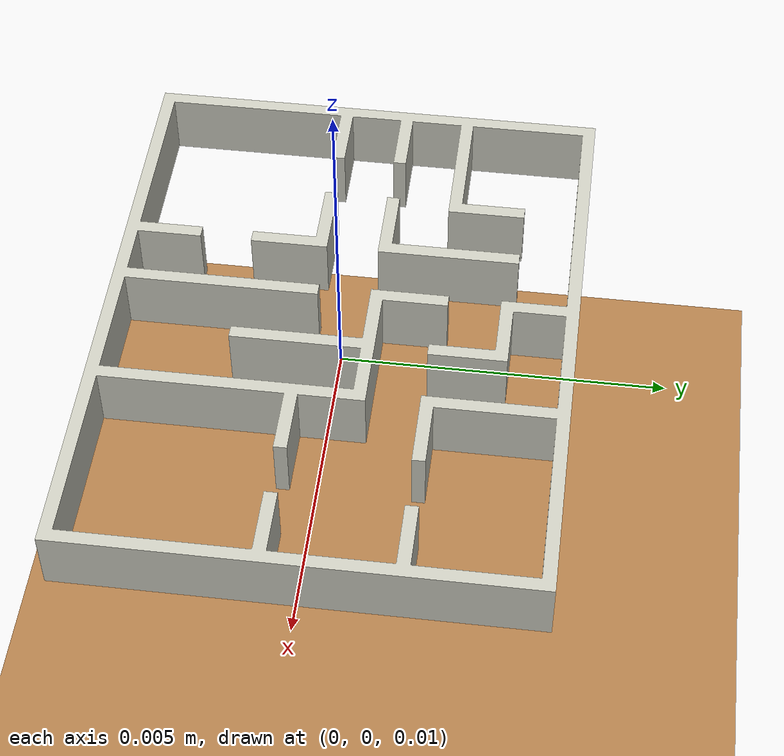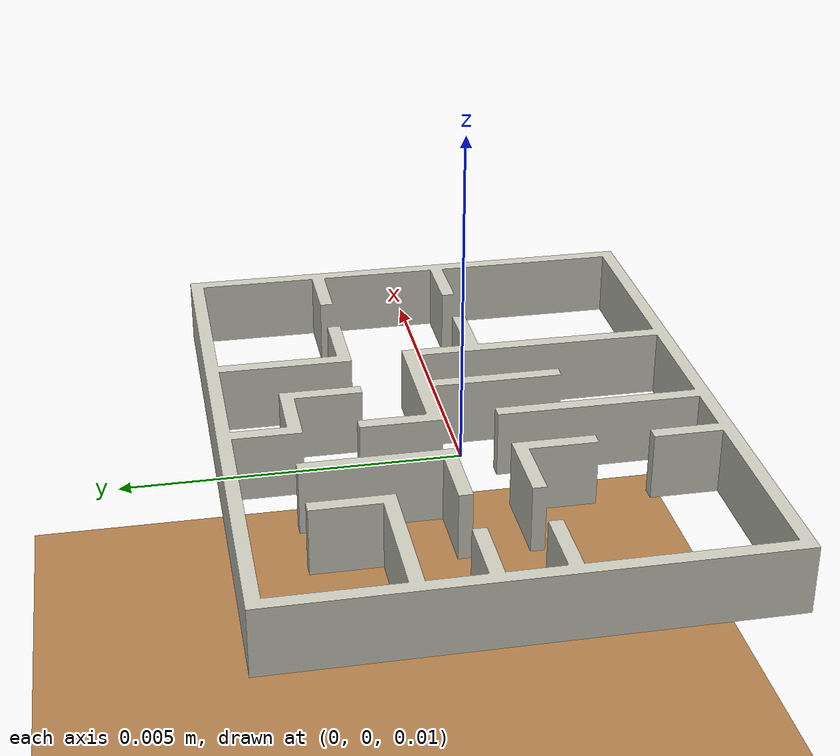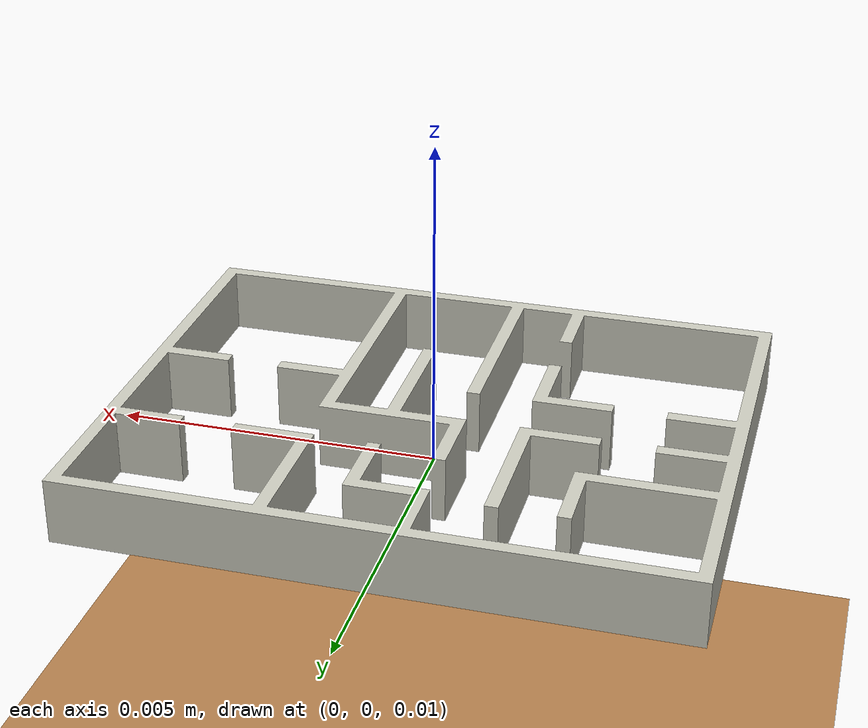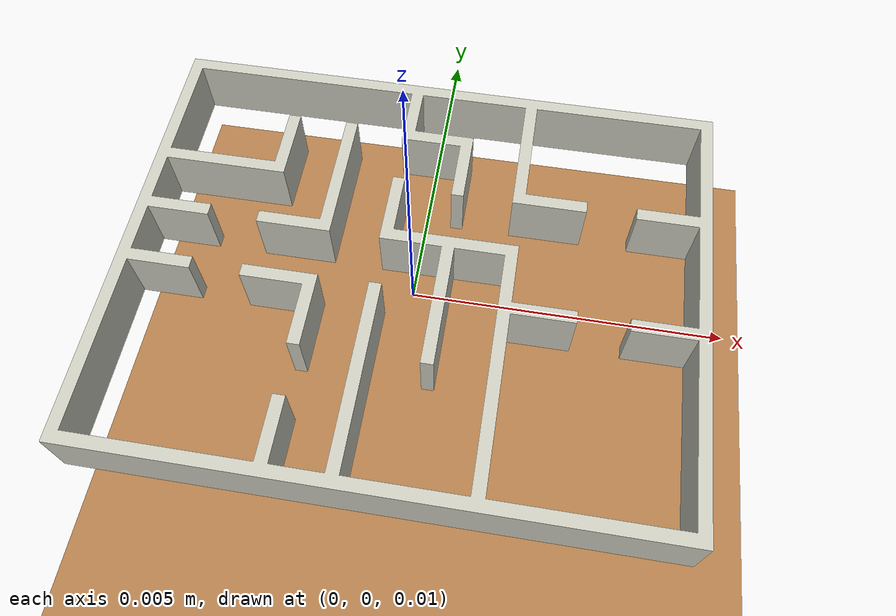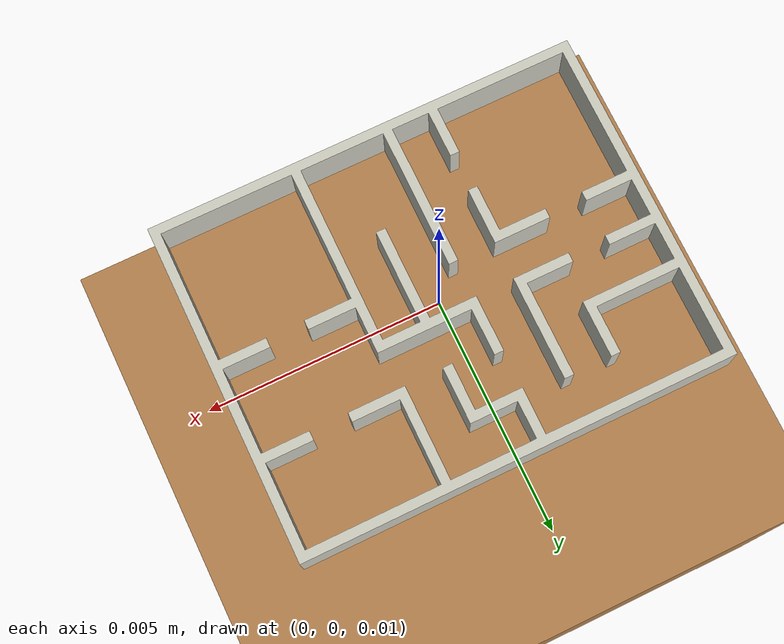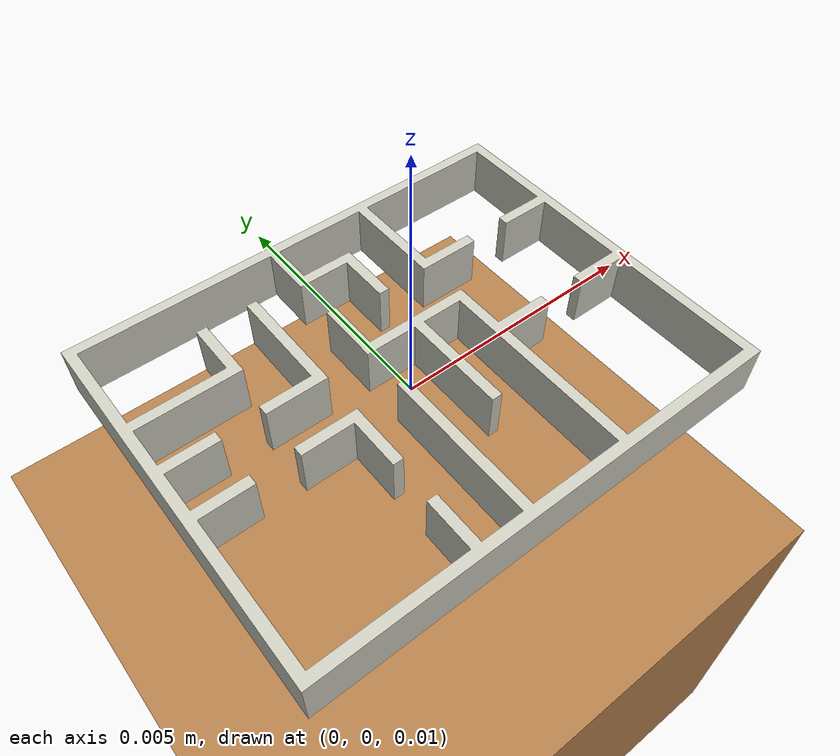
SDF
<?xml version="1.0"?>
<sdf version="1.4">
  <world name="default">

    <include>
      <uri>model://sun</uri>
    </include>

    <model name="ground">
      <pose>0 0 0 0 0 0</pose>
      <static>true</static>
      <link name="body">
        <visual name="visual">
          <geometry>
            <box>
              <size>9 7 0.01</size>
            </box>
          </geometry>
          <material>
            <script>
              <uri>./materials/gazebo.material</uri>
              <name>Gazebo/Wood</name>
            </script>
          </material>
        </visual>
        <collision name="collision">
          <geometry>
            <box>
              <size>9 7 0.01</size>
            </box>
          </geometry>
        </collision>
      </link>
    </model>

    <model name="floor_plan">
      <pose>0 0 0.01 0 0 0</pose>
      <static>true</static>
      <link name="body">
        <visual name="visual">
          <geometry>
            <mesh>
            <uri>./meshes/apr_world1_meters.STL</uri>
            <scale>0.001 0.001 0.001</scale>
            </mesh>
          </geometry>
          <material>
            <script>
              <uri>./materials/gazebo.material</uri>
              <name>Gazebo/PaintedWall</name>
            </script>
          </material>
        </visual>
        <collision name="collision">
         <geometry>
            <mesh>
            <uri>./meshes/apr_world1_meters.STL</uri>
            <scale>0.001 0.001 0.001</scale>
            </mesh>
         </geometry>
        </collision>
      </link>
    </model>
  </world>
</sdf>
